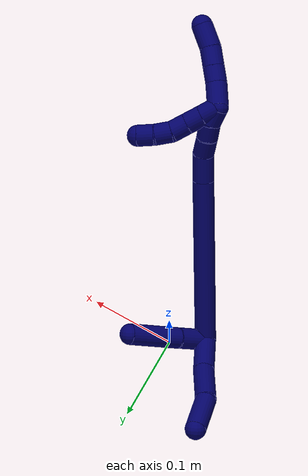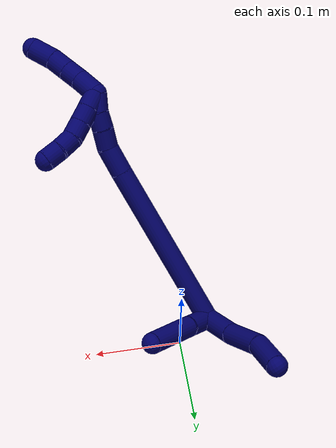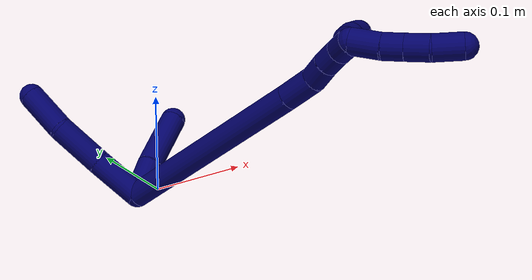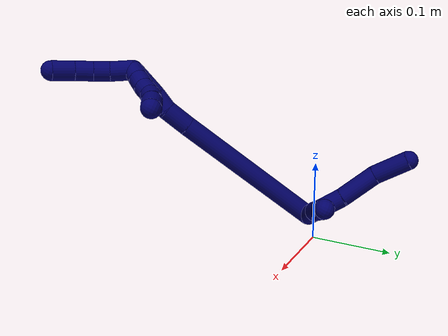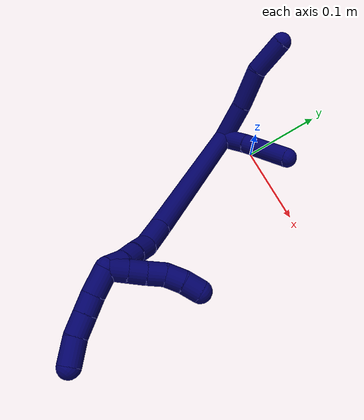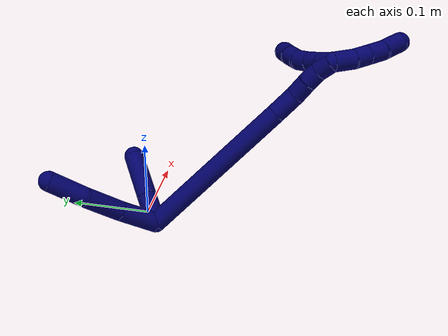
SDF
<sdf version="1.7">
 <world name="default">
  <model name="7">
   <static>0</static>
   <link name="7">
    <collision name="collision-cylinder-e_1_2_8">
     <pose>0.014096 -0.016074 -0.013699 2.27659 0.58853 1.16182</pose>
     <geometry><cylinder><radius>0.0125</radius><length>0.050782</length></cylinder></geometry>
     <surface>
      <friction><ode><mu>1.16</mu><mu2>1.16</mu2><slip1>0</slip1><slip2>0</slip2></ode></friction>
      <contact><ode><kp>1e+06</kp><kd>1</kd><max_vel>0</max_vel><min_depth>0.001</min_depth></ode></contact>
     </surface>
    </collision>
    <visual name="visual-cylinder-e_1_2_8">
     <pose>0.014096 -0.016074 -0.013699 2.27659 0.58853 1.16182</pose>
     <geometry><cylinder><radius>0.0125</radius><length>0.050782</length></cylinder></geometry>
     <material><ambient>0.003922 0 0.403922 1</ambient></material>
    </visual>
    <collision name="collision-cylinder-e_2_8_9">
     <pose>0.04483 -0.047924 -0.039024 2.2059 0.703932 1.25706</pose>
     <geometry><cylinder><radius>0.0125</radius><length>0.051418</length></cylinder></geometry>
     <surface>
      <friction><ode><mu>1.16</mu><mu2>1.16</mu2><slip1>0</slip1><slip2>0</slip2></ode></friction>
      <contact><ode><kp>1e+06</kp><kd>1</kd><max_vel>0</max_vel><min_depth>0.001</min_depth></ode></contact>
     </surface>
    </collision>
    <visual name="visual-cylinder-e_2_8_9">
     <pose>0.04483 -0.047924 -0.039024 2.2059 0.703932 1.25706</pose>
     <geometry><cylinder><radius>0.0125</radius><length>0.051418</length></cylinder></geometry>
     <material><ambient>0.003922 0 0.403922 1</ambient></material>
    </visual>
    <collision name="collision-cylinder-e_3_9_6">
     <pose>0.070781 -0.081794 -0.063187 2.17672 0.400196 0.738949</pose>
     <geometry><cylinder><radius>0.0125</radius><length>0.0478</length></cylinder></geometry>
     <surface>
      <friction><ode><mu>1.16</mu><mu2>1.16</mu2><slip1>0</slip1><slip2>0</slip2></ode></friction>
      <contact><ode><kp>1e+06</kp><kd>1</kd><max_vel>0</max_vel><min_depth>0.001</min_depth></ode></contact>
     </surface>
    </collision>
    <visual name="visual-cylinder-e_3_9_6">
     <pose>0.070781 -0.081794 -0.063187 2.17672 0.400196 0.738949</pose>
     <geometry><cylinder><radius>0.0125</radius><length>0.0478</length></cylinder></geometry>
     <material><ambient>0.003922 0 0.403922 1</ambient></material>
    </visual>
    <collision name="collision-cylinder-e_1_2_10">
     <pose>-0.005458 -0.017793 0.002539 1.42906 -0.294839 -0.256212</pose>
     <geometry><cylinder><radius>0.0125</radius><length>0.037568</length></cylinder></geometry>
     <surface>
      <friction><ode><mu>1.16</mu><mu2>1.16</mu2><slip1>0</slip1><slip2>0</slip2></ode></friction>
      <contact><ode><kp>1e+06</kp><kd>1</kd><max_vel>0</max_vel><min_depth>0.001</min_depth></ode></contact>
     </surface>
    </collision>
    <visual name="visual-cylinder-e_1_2_10">
     <pose>-0.005458 -0.017793 0.002539 1.42906 -0.294839 -0.256212</pose>
     <geometry><cylinder><radius>0.0125</radius><length>0.037568</length></cylinder></geometry>
     <material><ambient>0.003922 0 0.403922 1</ambient></material>
    </visual>
    <collision name="collision-cylinder-e_2_10_5">
     <pose>-0.023071 -0.06406 0.009072 1.43144 -0.399946 -0.34889</pose>
     <geometry><cylinder><radius>0.0125</radius><length>0.062432</length></cylinder></geometry>
     <surface>
      <friction><ode><mu>1.16</mu><mu2>1.16</mu2><slip1>0</slip1><slip2>0</slip2></ode></friction>
      <contact><ode><kp>1e+06</kp><kd>1</kd><max_vel>0</max_vel><min_depth>0.001</min_depth></ode></contact>
     </surface>
    </collision>
    <visual name="visual-cylinder-e_2_10_5">
     <pose>-0.023071 -0.06406 0.009072 1.43144 -0.399946 -0.34889</pose>
     <geometry><cylinder><radius>0.0125</radius><length>0.062432</length></cylinder></geometry>
     <material><ambient>0.003922 0 0.403922 1</ambient></material>
    </visual>
    <collision name="collision-cylinder-e_1_2_11">
     <pose>0.01009 -0.019089 0.099095 0.190298 0.099653 0.009518</pose>
     <geometry><cylinder><radius>0.0125</radius><length>0.202839</length></cylinder></geometry>
     <surface>
      <friction><ode><mu>1.16</mu><mu2>1.16</mu2><slip1>0</slip1><slip2>0</slip2></ode></friction>
      <contact><ode><kp>1e+06</kp><kd>1</kd><max_vel>0</max_vel><min_depth>0.001</min_depth></ode></contact>
     </surface>
    </collision>
    <visual name="visual-cylinder-e_1_2_11">
     <pose>0.01009 -0.019089 0.099095 0.190298 0.099653 0.009518</pose>
     <geometry><cylinder><radius>0.0125</radius><length>0.202839</length></cylinder></geometry>
     <material><ambient>0.003922 0 0.403922 1</ambient></material>
    </visual>
    <collision name="collision-cylinder-e_2_11_12">
     <pose>0.022208 -0.041395 0.214114 0.199402 0.124188 0.012439</pose>
     <geometry><cylinder><radius>0.0125</radius><length>0.032745</length></cylinder></geometry>
     <surface>
      <friction><ode><mu>1.16</mu><mu2>1.16</mu2><slip1>0</slip1><slip2>0</slip2></ode></friction>
      <contact><ode><kp>1e+06</kp><kd>1</kd><max_vel>0</max_vel><min_depth>0.001</min_depth></ode></contact>
     </surface>
    </collision>
    <visual name="visual-cylinder-e_2_11_12">
     <pose>0.022208 -0.041395 0.214114 0.199402 0.124188 0.012439</pose>
     <geometry><cylinder><radius>0.0125</radius><length>0.032745</length></cylinder></geometry>
     <material><ambient>0.003922 0 0.403922 1</ambient></material>
    </visual>
    <collision name="collision-cylinder-e_3_12_13">
     <pose>0.028869 -0.047111 0.240175 0.241586 0.417631 0.051432</pose>
     <geometry><cylinder><radius>0.0125</radius><length>0.022843</length></cylinder></geometry>
     <surface>
      <friction><ode><mu>1.16</mu><mu2>1.16</mu2><slip1>0</slip1><slip2>0</slip2></ode></friction>
      <contact><ode><kp>1e+06</kp><kd>1</kd><max_vel>0</max_vel><min_depth>0.001</min_depth></ode></contact>
     </surface>
    </collision>
    <visual name="visual-cylinder-e_3_12_13">
     <pose>0.028869 -0.047111 0.240175 0.241586 0.417631 0.051432</pose>
     <geometry><cylinder><radius>0.0125</radius><length>0.022843</length></cylinder></geometry>
     <material><ambient>0.003922 0 0.403922 1</ambient></material>
    </visual>
    <collision name="collision-cylinder-e_4_13_14">
     <pose>0.036941 -0.051464 0.259678 0.195508 0.345801 0.03425</pose>
     <geometry><cylinder><radius>0.0125</radius><length>0.020298</length></cylinder></geometry>
     <surface>
      <friction><ode><mu>1.16</mu><mu2>1.16</mu2><slip1>0</slip1><slip2>0</slip2></ode></friction>
      <contact><ode><kp>1e+06</kp><kd>1</kd><max_vel>0</max_vel><min_depth>0.001</min_depth></ode></contact>
     </surface>
    </collision>
    <visual name="visual-cylinder-e_4_13_14">
     <pose>0.036941 -0.051464 0.259678 0.195508 0.345801 0.03425</pose>
     <geometry><cylinder><radius>0.0125</radius><length>0.020298</length></cylinder></geometry>
     <material><ambient>0.003922 0 0.403922 1</ambient></material>
    </visual>
    <collision name="collision-cylinder-e_5_14_1">
     <pose>0.045385 -0.052868 0.27842 -0.047985 0.489734 -0.011993</pose>
     <geometry><cylinder><radius>0.0125</radius><length>0.021275</length></cylinder></geometry>
     <surface>
      <friction><ode><mu>1.16</mu><mu2>1.16</mu2><slip1>0</slip1><slip2>0</slip2></ode></friction>
      <contact><ode><kp>1e+06</kp><kd>1</kd><max_vel>0</max_vel><min_depth>0.001</min_depth></ode></contact>
     </surface>
    </collision>
    <visual name="visual-cylinder-e_5_14_1">
     <pose>0.045385 -0.052868 0.27842 -0.047985 0.489734 -0.011993</pose>
     <geometry><cylinder><radius>0.0125</radius><length>0.021275</length></cylinder></geometry>
     <material><ambient>0.003922 0 0.403922 1</ambient></material>
    </visual>
    <collision name="collision-cylinder-e_1_1_15">
     <pose>0.043275 -0.057075 0.282533 2.41725 -0.791471 -1.66835</pose>
     <geometry><cylinder><radius>0.0125</radius><length>0.02</length></cylinder></geometry>
     <surface>
      <friction><ode><mu>1.16</mu><mu2>1.16</mu2><slip1>0</slip1><slip2>0</slip2></ode></friction>
      <contact><ode><kp>1e+06</kp><kd>1</kd><max_vel>0</max_vel><min_depth>0.001</min_depth></ode></contact>
     </surface>
    </collision>
    <visual name="visual-cylinder-e_1_1_15">
     <pose>0.043275 -0.057075 0.282533 2.41725 -0.791471 -1.66835</pose>
     <geometry><cylinder><radius>0.0125</radius><length>0.02</length></cylinder></geometry>
     <material><ambient>0.003922 0 0.403922 1</ambient></material>
    </visual>
    <collision name="collision-cylinder-e_2_15_16">
     <pose>0.029131 -0.066646 0.272128 2.3789 -0.779576 -1.59502</pose>
     <geometry><cylinder><radius>0.0125</radius><length>0.02</length></cylinder></geometry>
     <surface>
      <friction><ode><mu>1.16</mu><mu2>1.16</mu2><slip1>0</slip1><slip2>0</slip2></ode></friction>
      <contact><ode><kp>1e+06</kp><kd>1</kd><max_vel>0</max_vel><min_depth>0.001</min_depth></ode></contact>
     </surface>
    </collision>
    <visual name="visual-cylinder-e_2_15_16">
     <pose>0.029131 -0.066646 0.272128 2.3789 -0.779576 -1.59502</pose>
     <geometry><cylinder><radius>0.0125</radius><length>0.02</length></cylinder></geometry>
     <material><ambient>0.003922 0 0.403922 1</ambient></material>
    </visual>
    <collision name="collision-cylinder-e_3_16_17">
     <pose>0.015784 -0.077408 0.261899 2.28661 -0.683829 -1.3263</pose>
     <geometry><cylinder><radius>0.0125</radius><length>0.02</length></cylinder></geometry>
     <surface>
      <friction><ode><mu>1.16</mu><mu2>1.16</mu2><slip1>0</slip1><slip2>0</slip2></ode></friction>
      <contact><ode><kp>1e+06</kp><kd>1</kd><max_vel>0</max_vel><min_depth>0.001</min_depth></ode></contact>
     </surface>
    </collision>
    <visual name="visual-cylinder-e_3_16_17">
     <pose>0.015784 -0.077408 0.261899 2.28661 -0.683829 -1.3263</pose>
     <geometry><cylinder><radius>0.0125</radius><length>0.02</length></cylinder></geometry>
     <material><ambient>0.003922 0 0.403922 1</ambient></material>
    </visual>
    <collision name="collision-cylinder-e_4_17_18">
     <pose>0.002106 -0.089664 0.254628 1.89932 -0.827208 -1.10034</pose>
     <geometry><cylinder><radius>0.0125</radius><length>0.02</length></cylinder></geometry>
     <surface>
      <friction><ode><mu>1.16</mu><mu2>1.16</mu2><slip1>0</slip1><slip2>0</slip2></ode></friction>
      <contact><ode><kp>1e+06</kp><kd>1</kd><max_vel>0</max_vel><min_depth>0.001</min_depth></ode></contact>
     </surface>
    </collision>
    <visual name="visual-cylinder-e_4_17_18">
     <pose>0.002106 -0.089664 0.254628 1.89932 -0.827208 -1.10034</pose>
     <geometry><cylinder><radius>0.0125</radius><length>0.02</length></cylinder></geometry>
     <material><ambient>0.003922 0 0.403922 1</ambient></material>
    </visual>
    <collision name="collision-cylinder-e_5_18_4">
     <pose>-0.013588 -0.101467 0.251239 1.79061 -0.985053 -1.18029</pose>
     <geometry><cylinder><radius>0.0125</radius><length>0.02</length></cylinder></geometry>
     <surface>
      <friction><ode><mu>1.16</mu><mu2>1.16</mu2><slip1>0</slip1><slip2>0</slip2></ode></friction>
      <contact><ode><kp>1e+06</kp><kd>1</kd><max_vel>0</max_vel><min_depth>0.001</min_depth></ode></contact>
     </surface>
    </collision>
    <visual name="visual-cylinder-e_5_18_4">
     <pose>-0.013588 -0.101467 0.251239 1.79061 -0.985053 -1.18029</pose>
     <geometry><cylinder><radius>0.0125</radius><length>0.02</length></cylinder></geometry>
     <material><ambient>0.003922 0 0.403922 1</ambient></material>
    </visual>
    <collision name="collision-cylinder-e_1_1_19">
     <pose>0.044726 -0.048189 0.300295 -0.326244 -0.40541 0.067627</pose>
     <geometry><cylinder><radius>0.0125</radius><length>0.028715</length></cylinder></geometry>
     <surface>
      <friction><ode><mu>1.16</mu><mu2>1.16</mu2><slip1>0</slip1><slip2>0</slip2></ode></friction>
      <contact><ode><kp>1e+06</kp><kd>1</kd><max_vel>0</max_vel><min_depth>0.001</min_depth></ode></contact>
     </surface>
    </collision>
    <visual name="visual-cylinder-e_1_1_19">
     <pose>0.044726 -0.048189 0.300295 -0.326244 -0.40541 0.067627</pose>
     <geometry><cylinder><radius>0.0125</radius><length>0.028715</length></cylinder></geometry>
     <material><ambient>0.003922 0 0.403922 1</ambient></material>
    </visual>
    <collision name="collision-cylinder-e_2_19_20">
     <pose>0.03496 -0.042319 0.321823 -0.17985 -0.420428 0.038473</pose>
     <geometry><cylinder><radius>0.0125</radius><length>0.020108</length></cylinder></geometry>
     <surface>
      <friction><ode><mu>1.16</mu><mu2>1.16</mu2><slip1>0</slip1><slip2>0</slip2></ode></friction>
      <contact><ode><kp>1e+06</kp><kd>1</kd><max_vel>0</max_vel><min_depth>0.001</min_depth></ode></contact>
     </surface>
    </collision>
    <visual name="visual-cylinder-e_2_19_20">
     <pose>0.03496 -0.042319 0.321823 -0.17985 -0.420428 0.038473</pose>
     <geometry><cylinder><radius>0.0125</radius><length>0.020108</length></cylinder></geometry>
     <material><ambient>0.003922 0 0.403922 1</ambient></material>
    </visual>
    <collision name="collision-cylinder-e_3_20_21">
     <pose>0.026271 -0.038912 0.34117 -0.1695 -0.412965 0.035586</pose>
     <geometry><cylinder><radius>0.0125</radius><length>0.022855</length></cylinder></geometry>
     <surface>
      <friction><ode><mu>1.16</mu><mu2>1.16</mu2><slip1>0</slip1><slip2>0</slip2></ode></friction>
      <contact><ode><kp>1e+06</kp><kd>1</kd><max_vel>0</max_vel><min_depth>0.001</min_depth></ode></contact>
     </surface>
    </collision>
    <visual name="visual-cylinder-e_3_20_21">
     <pose>0.026271 -0.038912 0.34117 -0.1695 -0.412965 0.035586</pose>
     <geometry><cylinder><radius>0.0125</radius><length>0.022855</length></cylinder></geometry>
     <material><ambient>0.003922 0 0.403922 1</ambient></material>
    </visual>
    <collision name="collision-cylinder-e_4_21_3">
     <pose>0.014478 -0.037173 0.363677 0.002223 -0.533877 -0.000608</pose>
     <geometry><cylinder><radius>0.0125</radius><length>0.028322</length></cylinder></geometry>
     <surface>
      <friction><ode><mu>1.16</mu><mu2>1.16</mu2><slip1>0</slip1><slip2>0</slip2></ode></friction>
      <contact><ode><kp>1e+06</kp><kd>1</kd><max_vel>0</max_vel><min_depth>0.001</min_depth></ode></contact>
     </surface>
    </collision>
    <visual name="visual-cylinder-e_4_21_3">
     <pose>0.014478 -0.037173 0.363677 0.002223 -0.533877 -0.000608</pose>
     <geometry><cylinder><radius>0.0125</radius><length>0.028322</length></cylinder></geometry>
     <material><ambient>0.003922 0 0.403922 1</ambient></material>
    </visual>
    <collision name="collision-sphere-3">
     <pose>0.007272 -0.0372 0.375867 0 -0 0</pose>
     <geometry><sphere><radius>0.0125</radius></sphere></geometry>
     <surface>
      <friction><ode><mu>1.16</mu><mu2>1.16</mu2><slip1>0</slip1><slip2>0</slip2></ode></friction>
      <contact><ode><kp>1e+06</kp><kd>1</kd><max_vel>0</max_vel><min_depth>0.001</min_depth></ode></contact>
     </surface>
    </collision>
    <visual name="visual-sphere-3">
     <pose>0.007272 -0.0372 0.375867 0 -0 0</pose>
     <geometry><sphere><radius>0.0125</radius></sphere></geometry>
     <material><ambient>0.003922 0 0.403922 1</ambient></material>
    </visual>
    <collision name="collision-sphere-21">
     <pose>0.021684 -0.037146 0.351487 0 -0 0</pose>
     <geometry><sphere><radius>0.0125</radius></sphere></geometry>
     <surface>
      <friction><ode><mu>1.16</mu><mu2>1.16</mu2><slip1>0</slip1><slip2>0</slip2></ode></friction>
      <contact><ode><kp>1e+06</kp><kd>1</kd><max_vel>0</max_vel><min_depth>0.001</min_depth></ode></contact>
     </surface>
    </collision>
    <visual name="visual-sphere-21">
     <pose>0.021684 -0.037146 0.351487 0 -0 0</pose>
     <geometry><sphere><radius>0.0125</radius></sphere></geometry>
     <material><ambient>0.003922 0 0.403922 1</ambient></material>
    </visual>
    <collision name="collision-sphere-20">
     <pose>0.030857 -0.040677 0.330853 0 -0 0</pose>
     <geometry><sphere><radius>0.0125</radius></sphere></geometry>
     <surface>
      <friction><ode><mu>1.16</mu><mu2>1.16</mu2><slip1>0</slip1><slip2>0</slip2></ode></friction>
      <contact><ode><kp>1e+06</kp><kd>1</kd><max_vel>0</max_vel><min_depth>0.001</min_depth></ode></contact>
     </surface>
    </collision>
    <visual name="visual-sphere-20">
     <pose>0.030857 -0.040677 0.330853 0 -0 0</pose>
     <geometry><sphere><radius>0.0125</radius></sphere></geometry>
     <material><ambient>0.003922 0 0.403922 1</ambient></material>
    </visual>
    <collision name="collision-sphere-19">
     <pose>0.039064 -0.043961 0.312792 0 -0 0</pose>
     <geometry><sphere><radius>0.0125</radius></sphere></geometry>
     <surface>
      <friction><ode><mu>1.16</mu><mu2>1.16</mu2><slip1>0</slip1><slip2>0</slip2></ode></friction>
      <contact><ode><kp>1e+06</kp><kd>1</kd><max_vel>0</max_vel><min_depth>0.001</min_depth></ode></contact>
     </surface>
    </collision>
    <visual name="visual-sphere-19">
     <pose>0.039064 -0.043961 0.312792 0 -0 0</pose>
     <geometry><sphere><radius>0.0125</radius></sphere></geometry>
     <material><ambient>0.003922 0 0.403922 1</ambient></material>
    </visual>
    <collision name="collision-sphere-5">
     <pose>-0.035226 -0.092534 0.013066 0 -0 0</pose>
     <geometry><sphere><radius>0.0125</radius></sphere></geometry>
     <surface>
      <friction><ode><mu>1.16</mu><mu2>1.16</mu2><slip1>0</slip1><slip2>0</slip2></ode></friction>
      <contact><ode><kp>1e+06</kp><kd>1</kd><max_vel>0</max_vel><min_depth>0.001</min_depth></ode></contact>
     </surface>
    </collision>
    <visual name="visual-sphere-5">
     <pose>-0.035226 -0.092534 0.013066 0 -0 0</pose>
     <geometry><sphere><radius>0.0125</radius></sphere></geometry>
     <material><ambient>0.003922 0 0.403922 1</ambient></material>
    </visual>
    <collision name="collision-sphere-10">
     <pose>-0.010917 -0.035586 0.005078 0 -0 0</pose>
     <geometry><sphere><radius>0.0125</radius></sphere></geometry>
     <surface>
      <friction><ode><mu>1.16</mu><mu2>1.16</mu2><slip1>0</slip1><slip2>0</slip2></ode></friction>
      <contact><ode><kp>1e+06</kp><kd>1</kd><max_vel>0</max_vel><min_depth>0.001</min_depth></ode></contact>
     </surface>
    </collision>
    <visual name="visual-sphere-10">
     <pose>-0.010917 -0.035586 0.005078 0 -0 0</pose>
     <geometry><sphere><radius>0.0125</radius></sphere></geometry>
     <material><ambient>0.003922 0 0.403922 1</ambient></material>
    </visual>
    <collision name="collision-sphere-6">
     <pose>0.080093 -0.099887 -0.075723 0 -0 0</pose>
     <geometry><sphere><radius>0.0125</radius></sphere></geometry>
     <surface>
      <friction><ode><mu>1.16</mu><mu2>1.16</mu2><slip1>0</slip1><slip2>0</slip2></ode></friction>
      <contact><ode><kp>1e+06</kp><kd>1</kd><max_vel>0</max_vel><min_depth>0.001</min_depth></ode></contact>
     </surface>
    </collision>
    <visual name="visual-sphere-6">
     <pose>0.080093 -0.099887 -0.075723 0 -0 0</pose>
     <geometry><sphere><radius>0.0125</radius></sphere></geometry>
     <material><ambient>0.003922 0 0.403922 1</ambient></material>
    </visual>
    <collision name="collision-sphere-9">
     <pose>0.06147 -0.063701 -0.050651 0 -0 0</pose>
     <geometry><sphere><radius>0.0125</radius></sphere></geometry>
     <surface>
      <friction><ode><mu>1.16</mu><mu2>1.16</mu2><slip1>0</slip1><slip2>0</slip2></ode></friction>
      <contact><ode><kp>1e+06</kp><kd>1</kd><max_vel>0</max_vel><min_depth>0.001</min_depth></ode></contact>
     </surface>
    </collision>
    <visual name="visual-sphere-9">
     <pose>0.06147 -0.063701 -0.050651 0 -0 0</pose>
     <geometry><sphere><radius>0.0125</radius></sphere></geometry>
     <material><ambient>0.003922 0 0.403922 1</ambient></material>
    </visual>
    <collision name="collision-sphere-2">
     <geometry><sphere><radius>0.0125</radius></sphere></geometry>
     <surface>
      <friction><ode><mu>1.16</mu><mu2>1.16</mu2><slip1>0</slip1><slip2>0</slip2></ode></friction>
      <contact><ode><kp>1e+06</kp><kd>1</kd><max_vel>0</max_vel><min_depth>0.001</min_depth></ode></contact>
     </surface>
    </collision>
    <visual name="visual-sphere-2">
     <geometry><sphere><radius>0.0125</radius></sphere></geometry>
     <material><ambient>0.003922 0 0.403922 1</ambient></material>
    </visual>
    <collision name="collision-sphere-8">
     <pose>0.028191 -0.032148 -0.027397 0 -0 0</pose>
     <geometry><sphere><radius>0.0125</radius></sphere></geometry>
     <surface>
      <friction><ode><mu>1.16</mu><mu2>1.16</mu2><slip1>0</slip1><slip2>0</slip2></ode></friction>
      <contact><ode><kp>1e+06</kp><kd>1</kd><max_vel>0</max_vel><min_depth>0.001</min_depth></ode></contact>
     </surface>
    </collision>
    <visual name="visual-sphere-8">
     <pose>0.028191 -0.032148 -0.027397 0 -0 0</pose>
     <geometry><sphere><radius>0.0125</radius></sphere></geometry>
     <material><ambient>0.003922 0 0.403922 1</ambient></material>
    </visual>
    <collision name="collision-sphere-11">
     <pose>0.02018 -0.038177 0.19819 0 -0 0</pose>
     <geometry><sphere><radius>0.0125</radius></sphere></geometry>
     <surface>
      <friction><ode><mu>1.16</mu><mu2>1.16</mu2><slip1>0</slip1><slip2>0</slip2></ode></friction>
      <contact><ode><kp>1e+06</kp><kd>1</kd><max_vel>0</max_vel><min_depth>0.001</min_depth></ode></contact>
     </surface>
    </collision>
    <visual name="visual-sphere-11">
     <pose>0.02018 -0.038177 0.19819 0 -0 0</pose>
     <geometry><sphere><radius>0.0125</radius></sphere></geometry>
     <material><ambient>0.003922 0 0.403922 1</ambient></material>
    </visual>
    <collision name="collision-sphere-12">
     <pose>0.024236 -0.044613 0.230038 0 -0 0</pose>
     <geometry><sphere><radius>0.0125</radius></sphere></geometry>
     <surface>
      <friction><ode><mu>1.16</mu><mu2>1.16</mu2><slip1>0</slip1><slip2>0</slip2></ode></friction>
      <contact><ode><kp>1e+06</kp><kd>1</kd><max_vel>0</max_vel><min_depth>0.001</min_depth></ode></contact>
     </surface>
    </collision>
    <visual name="visual-sphere-12">
     <pose>0.024236 -0.044613 0.230038 0 -0 0</pose>
     <geometry><sphere><radius>0.0125</radius></sphere></geometry>
     <material><ambient>0.003922 0 0.403922 1</ambient></material>
    </visual>
    <collision name="collision-sphere-13">
     <pose>0.033501 -0.049609 0.250312 0 -0 0</pose>
     <geometry><sphere><radius>0.0125</radius></sphere></geometry>
     <surface>
      <friction><ode><mu>1.16</mu><mu2>1.16</mu2><slip1>0</slip1><slip2>0</slip2></ode></friction>
      <contact><ode><kp>1e+06</kp><kd>1</kd><max_vel>0</max_vel><min_depth>0.001</min_depth></ode></contact>
     </surface>
    </collision>
    <visual name="visual-sphere-13">
     <pose>0.033501 -0.049609 0.250312 0 -0 0</pose>
     <geometry><sphere><radius>0.0125</radius></sphere></geometry>
     <material><ambient>0.003922 0 0.403922 1</ambient></material>
    </visual>
    <collision name="collision-sphere-14">
     <pose>0.040381 -0.053318 0.269044 0 -0 0</pose>
     <geometry><sphere><radius>0.0125</radius></sphere></geometry>
     <surface>
      <friction><ode><mu>1.16</mu><mu2>1.16</mu2><slip1>0</slip1><slip2>0</slip2></ode></friction>
      <contact><ode><kp>1e+06</kp><kd>1</kd><max_vel>0</max_vel><min_depth>0.001</min_depth></ode></contact>
     </surface>
    </collision>
    <visual name="visual-sphere-14">
     <pose>0.040381 -0.053318 0.269044 0 -0 0</pose>
     <geometry><sphere><radius>0.0125</radius></sphere></geometry>
     <material><ambient>0.003922 0 0.403922 1</ambient></material>
    </visual>
    <collision name="collision-sphere-1">
     <pose>0.050389 -0.052418 0.287797 0 -0 0</pose>
     <geometry><sphere><radius>0.0125</radius></sphere></geometry>
     <surface>
      <friction><ode><mu>1.16</mu><mu2>1.16</mu2><slip1>0</slip1><slip2>0</slip2></ode></friction>
      <contact><ode><kp>1e+06</kp><kd>1</kd><max_vel>0</max_vel><min_depth>0.001</min_depth></ode></contact>
     </surface>
    </collision>
    <visual name="visual-sphere-1">
     <pose>0.050389 -0.052418 0.287797 0 -0 0</pose>
     <geometry><sphere><radius>0.0125</radius></sphere></geometry>
     <material><ambient>0.003922 0 0.403922 1</ambient></material>
    </visual>
    <collision name="collision-sphere-18">
     <pose>-0.005255 -0.096072 0.252444 0 -0 0</pose>
     <geometry><sphere><radius>0.0125</radius></sphere></geometry>
     <surface>
      <friction><ode><mu>1.16</mu><mu2>1.16</mu2><slip1>0</slip1><slip2>0</slip2></ode></friction>
      <contact><ode><kp>1e+06</kp><kd>1</kd><max_vel>0</max_vel><min_depth>0.001</min_depth></ode></contact>
     </surface>
    </collision>
    <visual name="visual-sphere-18">
     <pose>-0.005255 -0.096072 0.252444 0 -0 0</pose>
     <geometry><sphere><radius>0.0125</radius></sphere></geometry>
     <material><ambient>0.003922 0 0.403922 1</ambient></material>
    </visual>
    <collision name="collision-sphere-15">
     <pose>0.036161 -0.061732 0.27727 0 -0 0</pose>
     <geometry><sphere><radius>0.0125</radius></sphere></geometry>
     <surface>
      <friction><ode><mu>1.16</mu><mu2>1.16</mu2><slip1>0</slip1><slip2>0</slip2></ode></friction>
      <contact><ode><kp>1e+06</kp><kd>1</kd><max_vel>0</max_vel><min_depth>0.001</min_depth></ode></contact>
     </surface>
    </collision>
    <visual name="visual-sphere-15">
     <pose>0.036161 -0.061732 0.27727 0 -0 0</pose>
     <geometry><sphere><radius>0.0125</radius></sphere></geometry>
     <material><ambient>0.003922 0 0.403922 1</ambient></material>
    </visual>
    <collision name="collision-sphere-16">
     <pose>0.022101 -0.071559 0.266986 0 -0 0</pose>
     <geometry><sphere><radius>0.0125</radius></sphere></geometry>
     <surface>
      <friction><ode><mu>1.16</mu><mu2>1.16</mu2><slip1>0</slip1><slip2>0</slip2></ode></friction>
      <contact><ode><kp>1e+06</kp><kd>1</kd><max_vel>0</max_vel><min_depth>0.001</min_depth></ode></contact>
     </surface>
    </collision>
    <visual name="visual-sphere-16">
     <pose>0.022101 -0.071559 0.266986 0 -0 0</pose>
     <geometry><sphere><radius>0.0125</radius></sphere></geometry>
     <material><ambient>0.003922 0 0.403922 1</ambient></material>
    </visual>
    <collision name="collision-sphere-17">
     <pose>0.009466 -0.083257 0.256812 0 -0 0</pose>
     <geometry><sphere><radius>0.0125</radius></sphere></geometry>
     <surface>
      <friction><ode><mu>1.16</mu><mu2>1.16</mu2><slip1>0</slip1><slip2>0</slip2></ode></friction>
      <contact><ode><kp>1e+06</kp><kd>1</kd><max_vel>0</max_vel><min_depth>0.001</min_depth></ode></contact>
     </surface>
    </collision>
    <visual name="visual-sphere-17">
     <pose>0.009466 -0.083257 0.256812 0 -0 0</pose>
     <geometry><sphere><radius>0.0125</radius></sphere></geometry>
     <material><ambient>0.003922 0 0.403922 1</ambient></material>
    </visual>
    <collision name="collision-sphere-4">
     <pose>-0.021921 -0.106862 0.250033 0 -0 0</pose>
     <geometry><sphere><radius>0.0125</radius></sphere></geometry>
     <surface>
      <friction><ode><mu>1.16</mu><mu2>1.16</mu2><slip1>0</slip1><slip2>0</slip2></ode></friction>
      <contact><ode><kp>1e+06</kp><kd>1</kd><max_vel>0</max_vel><min_depth>0.001</min_depth></ode></contact>
     </surface>
    </collision>
    <visual name="visual-sphere-4">
     <pose>-0.021921 -0.106862 0.250033 0 -0 0</pose>
     <geometry><sphere><radius>0.0125</radius></sphere></geometry>
     <material><ambient>0.003922 0 0.403922 1</ambient></material>
    </visual>
    <inertial>
     <pose>0.019252 -0.043137 0.131162 0 -0 0</pose>
     <mass>0.75</mass>
     <inertia>
      <ixx>0.000777</ixx>
      <ixy>0</ixy>
      <ixz>0</ixz>
      <iyy>0.000721</iyy>
      <iyz>0</iyz>
      <izz>0.000136</izz>
     </inertia>
    </inertial>
   </link>
   <pose>-0.036909 -0.021159 0.011968 -0.970751 -0.634368 -3.05462</pose>
  </model>
 </world>
</sdf>
